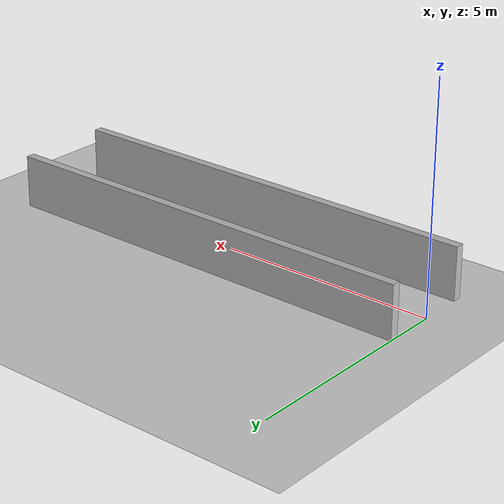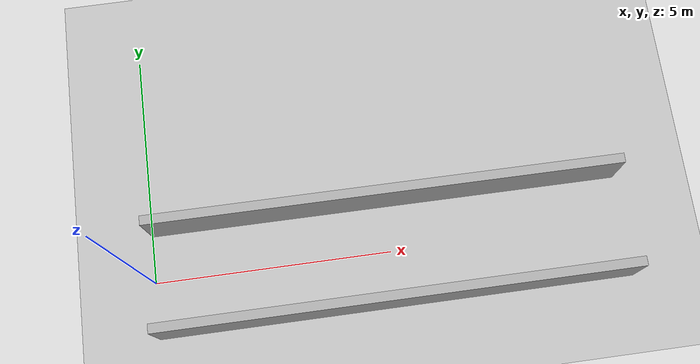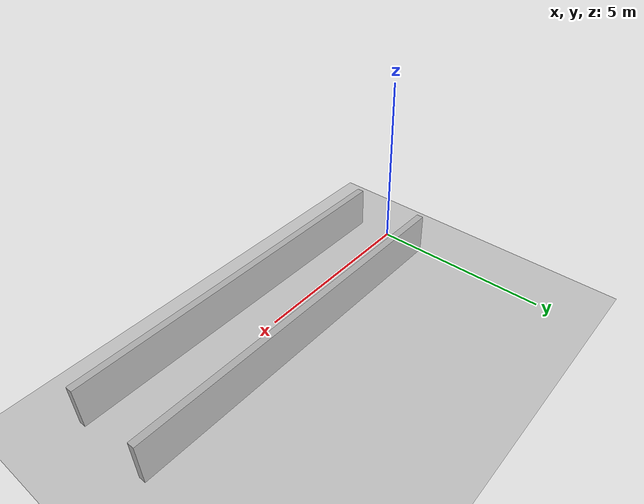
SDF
<?xml version="1.0"?>
<sdf version="1.6">
  <world name="v2-04g-r4-r1-corridor-s5101">
    <gravity>0 0 -9.81</gravity>
    <physics name="v2_deterministic" type="ode">
      <max_step_size>0.002</max_step_size>
      <real_time_update_rate>500</real_time_update_rate>
    </physics>
    <include>
      <uri>model://sun</uri>
    </include>
    <include>
      <uri>model://ground_plane</uri>
    </include>
    <model name="corridor-left">
      <static>true</static>
      <pose>4.998393525 1.092238235 0.600000000 0 0 -0.003366687</pose>
      <link name="link">
        <collision name="collision">
          <geometry>
            <box>
              <size>10.000000 0.200000 1.200000</size>
            </box>
          </geometry>
        </collision>
        <visual name="visual">
          <geometry>
            <box>
              <size>10.000000 0.200000 1.200000</size>
            </box>
          </geometry>
        </visual>
      </link>
    </model>
    <model name="corridor-right">
      <static>true</static>
      <pose>5.007779166 -1.087902031 0.600000000 0 0 -0.000714013</pose>
      <link name="link">
        <collision name="collision">
          <geometry>
            <box>
              <size>10.000000 0.200000 1.200000</size>
            </box>
          </geometry>
        </collision>
        <visual name="visual">
          <geometry>
            <box>
              <size>10.000000 0.200000 1.200000</size>
            </box>
          </geometry>
        </visual>
      </link>
    </model>
  </world>
</sdf>
